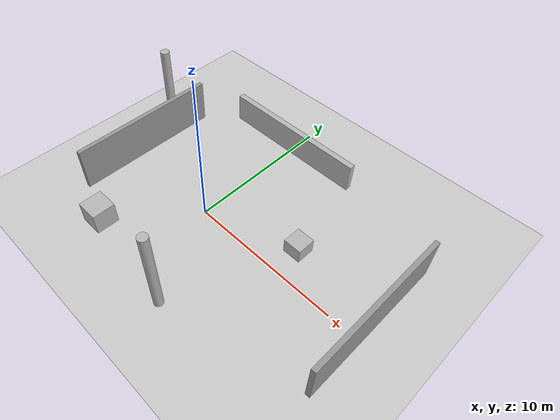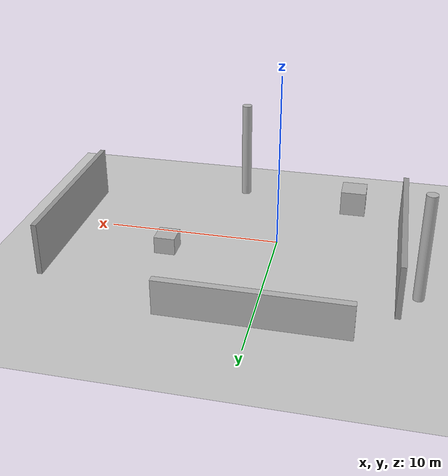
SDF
<?xml version="1.0" ?>
<sdf version="1.5">
  <world name="default">
    <include><uri>model://sun</uri></include>
    <include><uri>model://ground_plane</uri></include>
    <include><uri>model://asphalt_plane</uri></include>

    <!-- Rock 1 -->
    <model name="rock_1">
      <static>true</static>
      <pose>6 2 0.5 0 0 0</pose>
      <link name="link">
        <collision name="c"><geometry><box><size>1.2 1.2 1.0</size></box></geometry></collision>
        <visual name="v"><geometry><box><size>1.2 1.2 1.0</size></box></geometry></visual>
      </link>
    </model>

    <!-- Rock 2 -->
    <model name="rock_2">
      <static>true</static>
      <pose>-4 -5 0.75 0 0 0</pose>
      <link name="link">
        <collision name="c"><geometry><box><size>1.5 1.5 1.5</size></box></geometry></collision>
        <visual name="v"><geometry><box><size>1.5 1.5 1.5</size></box></geometry></visual>
      </link>
    </model>

    <!-- Tree trunk 1 -->
    <model name="tree_1">
      <static>true</static>
      <pose>3 -6 3 0 0 0</pose>
      <link name="link">
        <collision name="c"><geometry><cylinder><radius>0.3</radius><length>6</length></cylinder></geometry></collision>
        <visual name="v"><geometry><cylinder><radius>0.3</radius><length>6</length></cylinder></geometry></visual>
      </link>
    </model>

    <!-- Tree trunk 2 -->
    <model name="tree_2">
      <static>true</static>
      <pose>-8 4 3 0 0 0</pose>
      <link name="link">
        <collision name="c"><geometry><cylinder><radius>0.3</radius><length>6</length></cylinder></geometry></collision>
        <visual name="v"><geometry><cylinder><radius>0.3</radius><length>6</length></cylinder></geometry></visual>
      </link>
    </model>

    <!-- Low wall -->
    <model name="wall_1">
      <static>true</static>
      <pose>0 8 1 0 0 0</pose>
      <link name="link">
        <collision name="c"><geometry><box><size>10 0.4 2</size></box></geometry></collision>
        <visual name="v"><geometry><box><size>10 0.4 2</size></box></geometry></visual>
      </link>
    </model>

    <physics name='default_physics' default='0' type='ode'>
      <gravity>0 0 -9.8066</gravity>
      <max_step_size>0.004</max_step_size>
      <real_time_factor>1</real_time_factor>
      <real_time_update_rate>250</real_time_update_rate>
    </physics>
      <model name='wall_west'>
      <static>true</static>
      <pose>-7 1 1.5 0 0 0</pose>
      <link name='link'>
        <collision name='collision'><geometry><box><size>0.3 10 3</size></box></geometry></collision>
        <visual name='visual'><geometry><box><size>0.3 10 3</size></box></geometry>
          <material><script><uri>file://media/materials/scripts/gazebo.material</uri><name>Gazebo/Grey</name></script></material>
        </visual>
      </link>
    </model>
    <model name='wall_east'>
      <static>true</static>
      <pose>12 1 1.5 0 0 0</pose>
      <link name='link'>
        <collision name='collision'><geometry><box><size>0.3 10 3</size></box></geometry></collision>
        <visual name='visual'><geometry><box><size>0.3 10 3</size></box></geometry>
          <material><script><uri>file://media/materials/scripts/gazebo.material</uri><name>Gazebo/Grey</name></script></material>
        </visual>
      </link>
    </model>
    <plugin name='wind_plugin' filename='libgazebo_wind_plugin.so'>
      <frameId>base_link</frameId>
      <robotNamespace/>
      <windVelocityMean>3.0</windVelocityMean>
      <windVelocityMax>10.0</windVelocityMax>
      <windVelocityVariance>0.5</windVelocityVariance>
      <windDirectionMean>0 1 0</windDirectionMean>
      <windDirectionVariance>0.05</windDirectionVariance>
      <windGustStart>180</windGustStart>
      <windGustDuration>600</windGustDuration>
      <windGustVelocityMean>3.0</windGustVelocityMean>
      <windGustVelocityMax>10.0</windGustVelocityMax>
      <windGustVelocityVariance>0.5</windGustVelocityVariance>
      <windGustDirectionMean>1 0 0</windGustDirectionMean>
      <windGustDirectionVariance>0.05</windGustDirectionVariance>
      <windPubTopic>world_wind</windPubTopic>
    </plugin>
</world>
</sdf>
